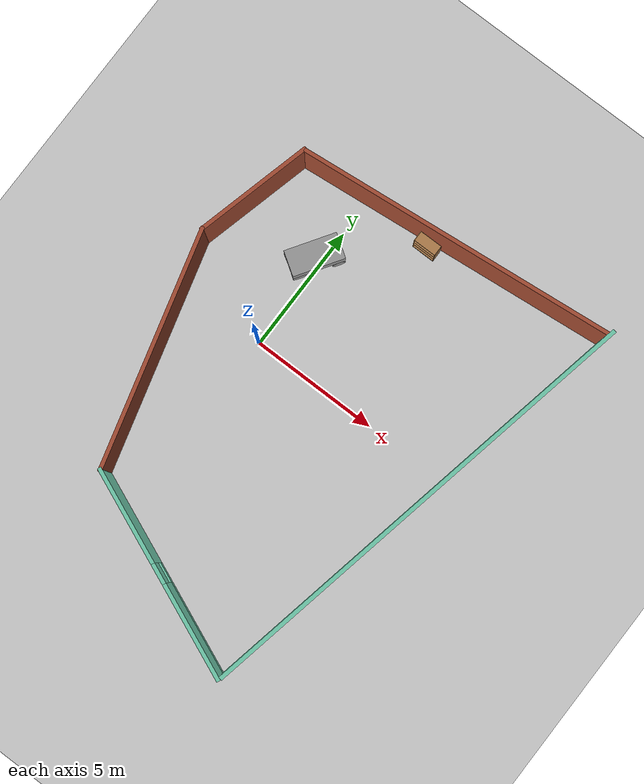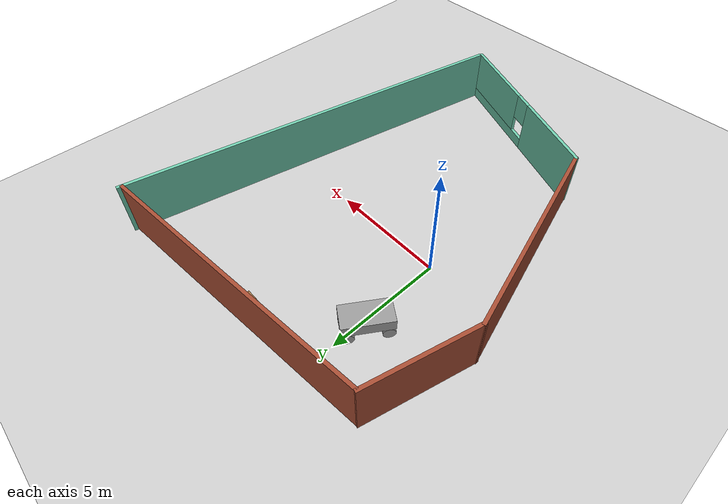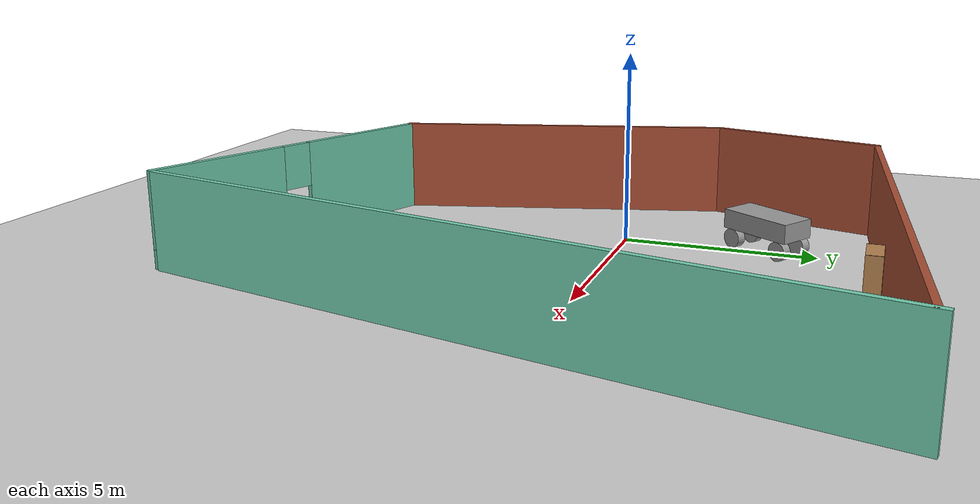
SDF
<sdf version="1.6">
 <world name="default">
  <model name="ground_plane">
   <static>1</static>
   <link name="link">
    <collision name="collision">
     <geometry><plane><normal>0 0 1</normal><size>100 100</size></plane></geometry>
     <surface><friction><ode><mu>100</mu><mu2>50</mu2></ode></friction></surface>
    </collision>
    <visual name="visual">
     <cast_shadows>0</cast_shadows>
     <geometry><plane><normal>0 0 1</normal><size>100 100</size></plane></geometry>
     <material>
      <script><uri>file://media/materials/scripts/gazebo.material</uri><name>Gazebo/Grey</name></script>
     </material>
    </visual>
   </link>
  </model>
  <model name="building">
   <pose>3.01479 -1.33377 0 0 -0 0</pose>
   <link name="Wall_0">
    <collision name="Wall_0_Collision">
     <geometry><box><size>4.68634 0.15 2.5</size></box></geometry>
     <pose>0 0 1.25 0 -0 0</pose>
    </collision>
    <visual name="Wall_0_Visual">
     <pose>0 0 1.25 0 -0 0</pose>
     <geometry><box><size>4.68634 0.15 2.5</size></box></geometry>
     <material>
      <script><uri>file://media/materials/scripts/gazebo.material</uri><name>Gazebo/Bricks</name></script>
      <ambient>1 1 1 1</ambient>
     </material>
     <meta><layer>0</layer></meta>
    </visual>
    <pose>-6.21543 5.31738 0 0 0 -1.82044</pose>
   </link>
   <link name="Wall_1">
    <collision name="Wall_1_Collision">
     <geometry><box><size>9.25 0.15 2.5</size></box></geometry>
     <pose>0 0 1.25 0 -0 0</pose>
    </collision>
    <visual name="Wall_1_Visual">
     <pose>0 0 1.25 0 -0 0</pose>
     <geometry><box><size>9.25 0.15 2.5</size></box></geometry>
     <material>
      <script><uri>file://media/materials/scripts/gazebo.material</uri><name>Gazebo/Bricks</name></script>
      <ambient>1 1 1 1</ambient>
     </material>
     <meta><layer>0</layer></meta>
    </visual>
    <pose>-5.59818 -1.27544 0 0 0 -1.309</pose>
   </link>
   <link name="Wall_2">
    <pose>-0.620057 -7.27949 0 0 0 -0.400505</pose>
    <visual name="Wall_2_Visual_0">
     <pose>-2.3054 0 1.25 0 -0 0</pose>
     <geometry><box><size>3.7934 0.15 2.5</size></box></geometry>
     <material>
      <script><uri>file://media/materials/scripts/gazebo.material</uri><name>Gazebo/Grey</name></script>
      <ambient>0.435294 0.796078 0.67451 1</ambient>
     </material>
     <meta><layer>0</layer></meta>
    </visual>
    <collision name="Wall_2_Collision_0">
     <geometry><box><size>3.7934 0.15 2.5</size></box></geometry>
     <pose>-2.3054 0 1.25 0 -0 0</pose>
    </collision>
    <visual name="Wall_2_Visual_1">
     <pose>1.8967 0 0.25 0 -0 0</pose>
     <geometry><box><size>4.6108 0.15 0.5</size></box></geometry>
     <material>
      <script><uri>file://media/materials/scripts/gazebo.material</uri><name>Gazebo/Grey</name></script>
      <ambient>0.435294 0.796078 0.67451 1</ambient>
     </material>
     <meta><layer>0</layer></meta>
    </visual>
    <collision name="Wall_2_Collision_1">
     <geometry><box><size>4.6108 0.15 0.5</size></box></geometry>
     <pose>1.8967 0 0.25 0 -0 0</pose>
    </collision>
    <visual name="Wall_2_Visual_2">
     <pose>2.2967 0 1.5 0 -0 0</pose>
     <geometry><box><size>3.8108 0.15 2</size></box></geometry>
     <material>
      <script><uri>file://media/materials/scripts/gazebo.material</uri><name>Gazebo/Grey</name></script>
      <ambient>0.435294 0.796078 0.67451 1</ambient>
     </material>
     <meta><layer>0</layer></meta>
    </visual>
    <collision name="Wall_2_Collision_2">
     <geometry><box><size>3.8108 0.15 2</size></box></geometry>
     <pose>2.2967 0 1.5 0 -0 0</pose>
    </collision>
    <visual name="Wall_2_Visual_3">
     <pose>-0.008699 0 1.9 0 -0 0</pose>
     <geometry><box><size>0.8 0.15 1.2</size></box></geometry>
     <material>
      <script><uri>file://media/materials/scripts/gazebo.material</uri><name>Gazebo/Grey</name></script>
      <ambient>0.435294 0.796078 0.67451 1</ambient>
     </material>
     <meta><layer>0</layer></meta>
    </visual>
    <collision name="Wall_2_Collision_3">
     <geometry><box><size>0.8 0.15 1.2</size></box></geometry>
     <pose>-0.008699 0 1.9 0 -0 0</pose>
    </collision>
   </link>
   <link name="Wall_3">
    <collision name="Wall_3_Collision">
     <geometry><box><size>18.1467 0.15 2.5</size></box></geometry>
     <pose>0 0 1.25 0 -0 0</pose>
    </collision>
    <visual name="Wall_3_Visual">
     <pose>0 0 1.25 0 -0 0</pose>
     <geometry><box><size>18.1467 0.15 2.5</size></box></geometry>
     <material>
      <script><uri>file://media/materials/scripts/gazebo.material</uri><name>Gazebo/Grey</name></script>
      <ambient>0.435294 0.796078 0.67451 1</ambient>
     </material>
     <meta><layer>0</layer></meta>
    </visual>
    <pose>5.01491 0.074988 0 0 -0 1.37342</pose>
   </link>
   <link name="Wall_4">
    <collision name="Wall_4_Collision">
     <geometry><box><size>12.4968 0.15 2.5</size></box></geometry>
     <pose>0 0 1.25 0 -0 0</pose>
    </collision>
    <visual name="Wall_4_Visual">
     <pose>0 0 1.25 0 -0 0</pose>
     <geometry><box><size>12.4968 0.15 2.5</size></box></geometry>
     <material>
      <script><uri>file://media/materials/scripts/gazebo.material</uri><name>Gazebo/Bricks</name></script>
      <ambient>1 1 1 1</ambient>
     </material>
     <meta><layer>0</layer></meta>
    </visual>
    <pose>0.567424 8.13697 0 0 0 -3.04071</pose>
   </link>
   <static>1</static>
  </model>
  <model name="bookshelf">
   <static>1</static>
   <link name="link">
    <inertial><mass>1</mass></inertial>
    <collision name="back">
     <pose>0 0.005 0.6 0 -0 0</pose>
     <geometry><box><size>0.9 0.01 1.2</size></box></geometry>
    </collision>
    <visual name="visual1">
     <pose>0 0.005 0.6 0 -0 0</pose>
     <geometry><box><size>0.9 0.01 1.2</size></box></geometry>
     <material>
      <script><uri>file://media/materials/scripts/gazebo.material</uri><name>Gazebo/Wood</name></script>
     </material>
    </visual>
    <collision name="left_side">
     <pose>0.45 -0.195 0.6 0 -0 0</pose>
     <geometry><box><size>0.02 0.4 1.2</size></box></geometry>
    </collision>
    <visual name="visual2">
     <pose>0.45 -0.195 0.6 0 -0 0</pose>
     <geometry><box><size>0.02 0.4 1.2</size></box></geometry>
     <material>
      <script><uri>file://media/materials/scripts/gazebo.material</uri><name>Gazebo/Wood</name></script>
     </material>
    </visual>
    <collision name="right_side">
     <pose>-0.45 -0.195 0.6 0 -0 0</pose>
     <geometry><box><size>0.02 0.4 1.2</size></box></geometry>
    </collision>
    <visual name="visual3">
     <pose>-0.45 -0.195 0.6 0 -0 0</pose>
     <geometry><box><size>0.02 0.4 1.2</size></box></geometry>
     <material>
      <script><uri>file://media/materials/scripts/gazebo.material</uri><name>Gazebo/Wood</name></script>
     </material>
    </visual>
    <collision name="bottom">
     <pose>0 -0.195 0.03 0 -0 0</pose>
     <geometry><box><size>0.88 0.4 0.06</size></box></geometry>
    </collision>
    <visual name="visual4">
     <pose>0 -0.195 0.03 0 -0 0</pose>
     <geometry><box><size>0.88 0.4 0.06</size></box></geometry>
     <material>
      <script><uri>file://media/materials/scripts/gazebo.material</uri><name>Gazebo/Wood</name></script>
     </material>
    </visual>
    <collision name="top">
     <pose>0 -0.195 1.19 0 -0 0</pose>
     <geometry><box><size>0.88 0.4 0.02</size></box></geometry>
    </collision>
    <visual name="visual5">
     <pose>0 -0.195 1.19 0 -0 0</pose>
     <geometry><box><size>0.88 0.4 0.02</size></box></geometry>
     <material>
      <script><uri>file://media/materials/scripts/gazebo.material</uri><name>Gazebo/Wood</name></script>
     </material>
    </visual>
    <collision name="low_shelf">
     <pose>0 -0.195 0.43 0 -0 0</pose>
     <geometry><box><size>0.88 0.4 0.02</size></box></geometry>
    </collision>
    <visual name="visual6">
     <pose>0 -0.195 0.43 0 -0 0</pose>
     <geometry><box><size>0.88 0.4 0.02</size></box></geometry>
     <material>
      <script><uri>file://media/materials/scripts/gazebo.material</uri><name>Gazebo/Wood</name></script>
     </material>
    </visual>
    <collision name="high_shelf">
     <pose>0 -0.195 0.8 0 -0 0</pose>
     <geometry><box><size>0.88 0.4 0.02</size></box></geometry>
    </collision>
    <visual name="visual7">
     <pose>0 -0.195 0.8 0 -0 0</pose>
     <geometry><box><size>0.88 0.4 0.02</size></box></geometry>
     <material>
      <script><uri>file://media/materials/scripts/gazebo.material</uri><name>Gazebo/Wood</name></script>
     </material>
    </visual>
   </link>
   <pose>2.71764 6.57876 0 0 -0 0</pose>
  </model>
  <model name="robot_0">
   <link name="link_0">
    <pose>0.073816 0.570981 0 0 -0 0</pose>
    <inertial>
     <mass>1</mass>
     <inertia>
      <ixx>0.166667</ixx>
      <ixy>0</ixy>
      <ixz>0</ixz>
      <iyy>0.166667</iyy>
      <iyz>0</iyz>
      <izz>0.166667</izz>
     </inertia>
    </inertial>
    <visual name="visual">
     <geometry><box><size>2 1 0.5</size></box></geometry>
     <material>
      <lighting>1</lighting>
      <script><uri>file://media/materials/scripts/gazebo.material</uri><name>Gazebo/Grey</name></script>
      <ambient>0.3 0.3 0.3 1</ambient>
      <diffuse>0.7 0.7 0.7 1</diffuse>
      <specular>0.01 0.01 0.01 1</specular>
      <emissive>0 0 0 1</emissive>
      <shader type="vertex"><normal_map>__default__</normal_map></shader>
     </material>
    </visual>
    <collision name="collision">
     <geometry><box><size>2 1 0.5</size></box></geometry>
     <surface>
      <friction>
       <ode><mu>1</mu><mu2>1</mu2><fdir1>0 0 0</fdir1><slip1>0</slip1><slip2>0</slip2></ode>
       <torsional>
        <coefficient>1</coefficient>
        <patch_radius>0</patch_radius>
        <surface_radius>0</surface_radius>
        <use_patch_radius>1</use_patch_radius>
        <ode><slip>0</slip></ode>
       </torsional>
      </friction>
      <bounce><restitution_coefficient>0</restitution_coefficient><threshold>1e+06</threshold></bounce>
      <contact>
       <collide_without_contact>0</collide_without_contact>
       <collide_without_contact_bitmask>1</collide_without_contact_bitmask>
       <collide_bitmask>1</collide_bitmask>
       <ode>
        <soft_cfm>0</soft_cfm>
        <soft_erp>0.2</soft_erp>
        <kp>1e+13</kp>
        <kd>1</kd>
        <max_vel>0.01</max_vel>
        <min_depth>0</min_depth>
       </ode>
       <bullet>
        <split_impulse>1</split_impulse>
        <split_impulse_penetration_threshold>-0.01</split_impulse_penetration_threshold>
        <soft_cfm>0</soft_cfm>
        <soft_erp>0.2</soft_erp>
        <kp>1e+13</kp>
        <kd>1</kd>
       </bullet>
      </contact>
     </surface>
    </collision>
   </link>
   <link name="link_1">
    <pose>-0.676184 0.211005 -0.500013 1.5707 -0 0</pose>
    <inertial>
     <mass>1</mass>
     <inertia><ixx>0.145833</ixx><ixy>0</ixy><ixz>0</ixz><iyy>0.145833</iyy><iyz>0</iyz><izz>0.125</izz></inertia>
    </inertial>
    <visual name="visual">
     <geometry><cylinder><radius>0.25</radius><length>0.25</length></cylinder></geometry>
     <material>
      <lighting>1</lighting>
      <script><uri>file://media/materials/scripts/gazebo.material</uri><name>Gazebo/Grey</name></script>
      <ambient>0.3 0.3 0.3 1</ambient>
      <diffuse>0.7 0.7 0.7 1</diffuse>
      <specular>0.01 0.01 0.01 1</specular>
      <emissive>0 0 0 1</emissive>
      <shader type="vertex"><normal_map>__default__</normal_map></shader>
     </material>
    </visual>
    <collision name="collision">
     <geometry><cylinder><radius>0.25</radius><length>0.25</length></cylinder></geometry>
     <surface>
      <friction>
       <ode><mu>1</mu><mu2>1</mu2><fdir1>0 0 0</fdir1><slip1>0</slip1><slip2>0</slip2></ode>
       <torsional>
        <coefficient>1</coefficient>
        <patch_radius>0</patch_radius>
        <surface_radius>0</surface_radius>
        <use_patch_radius>1</use_patch_radius>
        <ode><slip>0</slip></ode>
       </torsional>
      </friction>
      <bounce><restitution_coefficient>0</restitution_coefficient><threshold>1e+06</threshold></bounce>
      <contact>
       <collide_without_contact>0</collide_without_contact>
       <collide_without_contact_bitmask>1</collide_without_contact_bitmask>
       <collide_bitmask>1</collide_bitmask>
       <ode>
        <soft_cfm>0</soft_cfm>
        <soft_erp>0.2</soft_erp>
        <kp>1e+13</kp>
        <kd>1</kd>
        <max_vel>0.01</max_vel>
        <min_depth>0</min_depth>
       </ode>
       <bullet>
        <split_impulse>1</split_impulse>
        <split_impulse_penetration_threshold>-0.01</split_impulse_penetration_threshold>
        <soft_cfm>0</soft_cfm>
        <soft_erp>0.2</soft_erp>
        <kp>1e+13</kp>
        <kd>1</kd>
       </bullet>
      </contact>
     </surface>
    </collision>
   </link>
   <link name="link_1_clone">
    <pose>-0.676184 0.945957 -0.500013 1.5707 -0 0</pose>
    <inertial>
     <mass>1</mass>
     <inertia><ixx>0.145833</ixx><ixy>0</ixy><ixz>0</ixz><iyy>0.145833</iyy><iyz>0</iyz><izz>0.125</izz></inertia>
    </inertial>
    <visual name="visual">
     <geometry><cylinder><radius>0.25</radius><length>0.25</length></cylinder></geometry>
     <material>
      <lighting>1</lighting>
      <script><uri>file://media/materials/scripts/gazebo.material</uri><name>Gazebo/Grey</name></script>
      <ambient>0.3 0.3 0.3 1</ambient>
      <diffuse>0.7 0.7 0.7 1</diffuse>
      <specular>0.01 0.01 0.01 1</specular>
      <emissive>0 0 0 1</emissive>
      <shader type="vertex"><normal_map>__default__</normal_map></shader>
     </material>
    </visual>
    <collision name="collision">
     <geometry><cylinder><radius>0.25</radius><length>0.25</length></cylinder></geometry>
     <surface>
      <friction>
       <ode><mu>1</mu><mu2>1</mu2><fdir1>0 0 0</fdir1><slip1>0</slip1><slip2>0</slip2></ode>
       <torsional>
        <coefficient>1</coefficient>
        <patch_radius>0</patch_radius>
        <surface_radius>0</surface_radius>
        <use_patch_radius>1</use_patch_radius>
        <ode><slip>0</slip></ode>
       </torsional>
      </friction>
      <bounce><restitution_coefficient>0</restitution_coefficient><threshold>1e+06</threshold></bounce>
      <contact>
       <collide_without_contact>0</collide_without_contact>
       <collide_without_contact_bitmask>1</collide_without_contact_bitmask>
       <collide_bitmask>1</collide_bitmask>
       <ode>
        <soft_cfm>0</soft_cfm>
        <soft_erp>0.2</soft_erp>
        <kp>1e+13</kp>
        <kd>1</kd>
        <max_vel>0.01</max_vel>
        <min_depth>0</min_depth>
       </ode>
       <bullet>
        <split_impulse>1</split_impulse>
        <split_impulse_penetration_threshold>-0.01</split_impulse_penetration_threshold>
        <soft_cfm>0</soft_cfm>
        <soft_erp>0.2</soft_erp>
        <kp>1e+13</kp>
        <kd>1</kd>
       </bullet>
      </contact>
     </surface>
    </collision>
   </link>
   <link name="link_1_clone_0">
    <pose>0.823816 0.945957 -0.500012 1.5707 -0 0</pose>
    <inertial>
     <mass>1</mass>
     <inertia><ixx>0.145833</ixx><ixy>0</ixy><ixz>0</ixz><iyy>0.145833</iyy><iyz>0</iyz><izz>0.125</izz></inertia>
    </inertial>
    <visual name="visual">
     <geometry><cylinder><radius>0.25</radius><length>0.25</length></cylinder></geometry>
     <material>
      <lighting>1</lighting>
      <script><uri>file://media/materials/scripts/gazebo.material</uri><name>Gazebo/Grey</name></script>
      <ambient>0.3 0.3 0.3 1</ambient>
      <diffuse>0.7 0.7 0.7 1</diffuse>
      <specular>0.01 0.01 0.01 1</specular>
      <emissive>0 0 0 1</emissive>
      <shader type="vertex"><normal_map>__default__</normal_map></shader>
     </material>
    </visual>
    <collision name="collision">
     <geometry><cylinder><radius>0.25</radius><length>0.25</length></cylinder></geometry>
     <surface>
      <friction>
       <ode><mu>1</mu><mu2>1</mu2><fdir1>0 0 0</fdir1><slip1>0</slip1><slip2>0</slip2></ode>
       <torsional>
        <coefficient>1</coefficient>
        <patch_radius>0</patch_radius>
        <surface_radius>0</surface_radius>
        <use_patch_radius>1</use_patch_radius>
        <ode><slip>0</slip></ode>
       </torsional>
      </friction>
      <bounce><restitution_coefficient>0</restitution_coefficient><threshold>1e+06</threshold></bounce>
      <contact>
       <collide_without_contact>0</collide_without_contact>
       <collide_without_contact_bitmask>1</collide_without_contact_bitmask>
       <collide_bitmask>1</collide_bitmask>
       <ode>
        <soft_cfm>0</soft_cfm>
        <soft_erp>0.2</soft_erp>
        <kp>1e+13</kp>
        <kd>1</kd>
        <max_vel>0.01</max_vel>
        <min_depth>0</min_depth>
       </ode>
       <bullet>
        <split_impulse>1</split_impulse>
        <split_impulse_penetration_threshold>-0.01</split_impulse_penetration_threshold>
        <soft_cfm>0</soft_cfm>
        <soft_erp>0.2</soft_erp>
        <kp>1e+13</kp>
        <kd>1</kd>
       </bullet>
      </contact>
     </surface>
    </collision>
   </link>
   <link name="link_1_clone_1">
    <pose>0.823816 0.196005 -0.500012 1.5707 -0 0</pose>
    <inertial>
     <mass>1</mass>
     <inertia><ixx>0.145833</ixx><ixy>0</ixy><ixz>0</ixz><iyy>0.145833</iyy><iyz>0</iyz><izz>0.125</izz></inertia>
    </inertial>
    <visual name="visual">
     <geometry><cylinder><radius>0.25</radius><length>0.25</length></cylinder></geometry>
     <material>
      <lighting>1</lighting>
      <script><uri>file://media/materials/scripts/gazebo.material</uri><name>Gazebo/Grey</name></script>
      <ambient>0.3 0.3 0.3 1</ambient>
      <diffuse>0.7 0.7 0.7 1</diffuse>
      <specular>0.01 0.01 0.01 1</specular>
      <emissive>0 0 0 1</emissive>
      <shader type="vertex"><normal_map>__default__</normal_map></shader>
     </material>
    </visual>
    <collision name="collision">
     <geometry><cylinder><radius>0.25</radius><length>0.25</length></cylinder></geometry>
     <surface>
      <friction>
       <ode><mu>1</mu><mu2>1</mu2><fdir1>0 0 0</fdir1><slip1>0</slip1><slip2>0</slip2></ode>
       <torsional>
        <coefficient>1</coefficient>
        <patch_radius>0</patch_radius>
        <surface_radius>0</surface_radius>
        <use_patch_radius>1</use_patch_radius>
        <ode><slip>0</slip></ode>
       </torsional>
      </friction>
      <bounce><restitution_coefficient>0</restitution_coefficient><threshold>1e+06</threshold></bounce>
      <contact>
       <collide_without_contact>0</collide_without_contact>
       <collide_without_contact_bitmask>1</collide_without_contact_bitmask>
       <collide_bitmask>1</collide_bitmask>
       <ode>
        <soft_cfm>0</soft_cfm>
        <soft_erp>0.2</soft_erp>
        <kp>1e+13</kp>
        <kd>1</kd>
        <max_vel>0.01</max_vel>
        <min_depth>0</min_depth>
       </ode>
       <bullet>
        <split_impulse>1</split_impulse>
        <split_impulse_penetration_threshold>-0.01</split_impulse_penetration_threshold>
        <soft_cfm>0</soft_cfm>
        <soft_erp>0.2</soft_erp>
        <kp>1e+13</kp>
        <kd>1</kd>
       </bullet>
      </contact>
     </surface>
    </collision>
   </link>
   <joint name="link_0_JOINT_0" type="revolute">
    <parent>link_0</parent>
    <child>link_1</child>
    <axis>
     <xyz>0 0 1</xyz>
     <use_parent_model_frame>0</use_parent_model_frame>
     <limit>
      <lower>-1.79769e+308</lower>
      <upper>1.79769e+308</upper>
      <effort>-1</effort>
      <velocity>-1</velocity>
     </limit>
     <dynamics>
      <spring_reference>0</spring_reference>
      <spring_stiffness>0</spring_stiffness>
      <damping>0</damping>
     </dynamics>
    </axis>
    <physics>
     <ode><limit><cfm>0</cfm><erp>0.2</erp></limit><suspension><cfm>0</cfm><erp>0.2</erp></suspension></ode>
    </physics>
   </joint>
   <joint name="link_0_JOINT_1" type="revolute">
    <parent>link_0</parent>
    <child>link_1_clone</child>
    <axis>
     <xyz>0 0 -1</xyz>
     <use_parent_model_frame>0</use_parent_model_frame>
     <limit>
      <lower>-1.79769e+308</lower>
      <upper>1.79769e+308</upper>
      <effort>-1</effort>
      <velocity>-1</velocity>
     </limit>
     <dynamics>
      <spring_reference>0</spring_reference>
      <spring_stiffness>0</spring_stiffness>
      <damping>0</damping>
     </dynamics>
    </axis>
    <physics>
     <ode><limit><cfm>0</cfm><erp>0.2</erp></limit><suspension><cfm>0</cfm><erp>0.2</erp></suspension></ode>
    </physics>
   </joint>
   <joint name="link_0_JOINT_2" type="revolute2">
    <parent>link_0</parent>
    <child>link_1_clone_1</child>
    <axis>
     <xyz>0 0 1</xyz>
     <use_parent_model_frame>0</use_parent_model_frame>
     <limit>
      <lower>-1.79769e+308</lower>
      <upper>1.79769e+308</upper>
      <effort>-1</effort>
      <velocity>-1</velocity>
     </limit>
     <dynamics>
      <spring_reference>0</spring_reference>
      <spring_stiffness>0</spring_stiffness>
      <damping>0</damping>
     </dynamics>
    </axis>
    <axis2>
     <xyz>0 1 0</xyz>
     <use_parent_model_frame>0</use_parent_model_frame>
     <dynamics>
      <spring_reference>0</spring_reference>
      <spring_stiffness>0</spring_stiffness>
      <damping>0</damping>
     </dynamics>
     <limit>
      <lower>-1.79769e+308</lower>
      <upper>1.79769e+308</upper>
      <effort>-1</effort>
      <velocity>-1</velocity>
     </limit>
    </axis2>
    <physics>
     <ode><limit><cfm>0</cfm><erp>0.2</erp></limit><suspension><cfm>0</cfm><erp>0.2</erp></suspension></ode>
    </physics>
   </joint>
   <joint name="link_0_JOINT_3" type="revolute2">
    <parent>link_0</parent>
    <child>link_1_clone_0</child>
    <axis>
     <xyz>-0 -0 -1</xyz>
     <use_parent_model_frame>0</use_parent_model_frame>
     <limit>
      <lower>-1.79769e+308</lower>
      <upper>1.79769e+308</upper>
      <effort>-1</effort>
      <velocity>-1</velocity>
     </limit>
     <dynamics>
      <spring_reference>0</spring_reference>
      <spring_stiffness>0</spring_stiffness>
      <damping>0</damping>
     </dynamics>
    </axis>
    <axis2>
     <xyz>0 1 0</xyz>
     <use_parent_model_frame>0</use_parent_model_frame>
     <dynamics>
      <spring_reference>0</spring_reference>
      <spring_stiffness>0</spring_stiffness>
      <damping>0</damping>
     </dynamics>
     <limit>
      <lower>-1.79769e+308</lower>
      <upper>1.79769e+308</upper>
      <effort>-1</effort>
      <velocity>-1</velocity>
     </limit>
    </axis2>
    <physics>
     <ode><limit><cfm>0</cfm><erp>0.2</erp></limit><suspension><cfm>0</cfm><erp>0.2</erp></suspension></ode>
    </physics>
   </joint>
   <static>0</static>
   <pose>0.171568 3.27646 0.750017 4e-06 5e-06 0.993017</pose>
  </model>
 </world>
</sdf>
